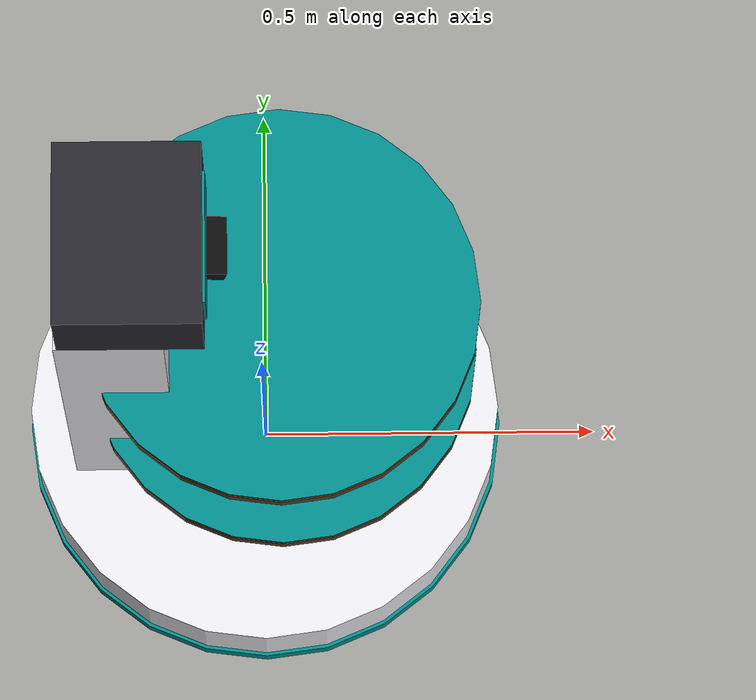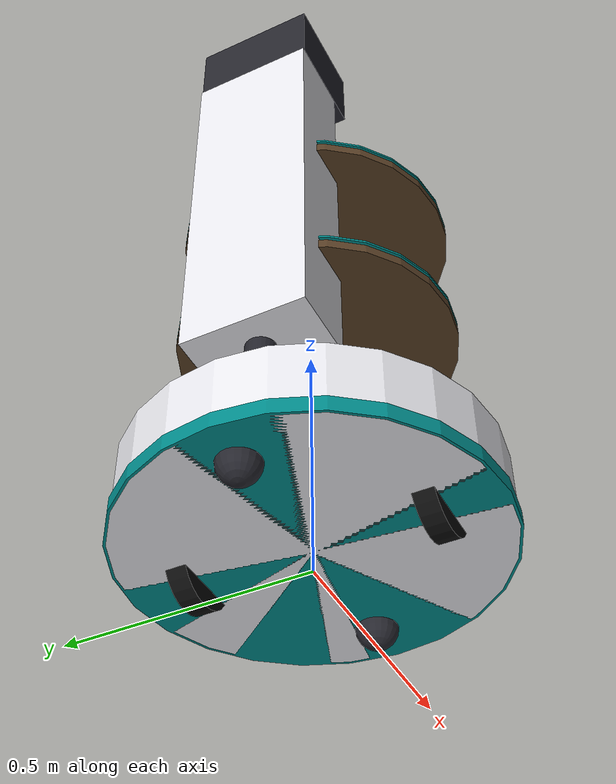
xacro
<?xml version="1.0"?>
<robot xmlns:xacro="http://ros.org/wiki/xacro" name="amr_butler">

  <!-- Namespace argument (same pattern as amr_description / amr_vision) -->
  <xacro:arg name="namespace" default="butler1"/>
  <xacro:property name="ns" value="$(arg namespace)"/>

  <!-- ======================= dimensions & masses ======================= -->
  <!-- base_link sits at wheel-axle height; base_footprint is its ground projection -->
  <xacro:property name="wheel_radius"    value="0.08"/>
  <xacro:property name="wheel_width"     value="0.04"/>
  <xacro:property name="wheel_sep"       value="0.46"/>
  <xacro:property name="wheel_mass"      value="1.0"/>

  <xacro:property name="chassis_radius"  value="0.35"/>
  <xacro:property name="chassis_height"  value="0.15"/>
  <!-- chassis bottom 0.04 m above ground -> center z in base_link frame -->
  <xacro:property name="chassis_z"       value="0.035"/>
  <xacro:property name="chassis_mass"    value="20.0"/>

  <xacro:property name="caster_radius"   value="0.04"/>
  <xacro:property name="caster_x"        value="0.26"/>
  <xacro:property name="caster_mass"     value="0.3"/>

  <!-- rear pillar: slim support pole from chassis top, then the main column -->
  <xacro:property name="pillar_x"        value="-0.20"/>
  <xacro:property name="pillar_sx"       value="0.15"/>
  <xacro:property name="pillar_sy"       value="0.25"/>
  <xacro:property name="pillar_sz"       value="0.79"/>
  <xacro:property name="pillar_z"        value="0.665"/>
  <xacro:property name="pillar_mass"     value="6.0"/>
  <xacro:property name="pole_radius"     value="0.03"/>
  <xacro:property name="pole_length"     value="0.16"/>
  <xacro:property name="pole_z"          value="0.19"/>

  <xacro:property name="tray_radius"     value="0.28"/>
  <xacro:property name="tray_thickness"  value="0.02"/>
  <xacro:property name="tray_x"          value="0.03"/>
  <xacro:property name="tray_mass"       value="0.8"/>
  <xacro:property name="tray_lower_z"    value="0.47"/>
  <xacro:property name="tray_upper_z"    value="0.77"/>

  <xacro:property name="head_sx"         value="0.20"/>
  <xacro:property name="head_sy"         value="0.25"/>
  <xacro:property name="head_sz"         value="0.15"/>
  <xacro:property name="head_x"          value="-0.17"/>
  <xacro:property name="head_z"          value="1.135"/>
  <xacro:property name="head_mass"       value="1.5"/>

  <!-- lidar center 0.25 m above ground (base_link z + wheel_radius) -->
  <xacro:property name="lidar_radius"    value="0.045"/>
  <xacro:property name="lidar_length"    value="0.05"/>
  <xacro:property name="lidar_x"         value="0.18"/>
  <xacro:property name="lidar_z"         value="0.17"/>
  <xacro:property name="lidar_mass"      value="0.2"/>

  <!-- camera ~1.2 m above ground, forward-facing, slight downward tilt -->
  <xacro:property name="camera_x"        value="-0.055"/>
  <xacro:property name="camera_z"        value="1.12"/>
  <xacro:property name="camera_pitch"    value="0.15"/>
  <xacro:property name="camera_mass"     value="0.05"/>

  <!-- ======================= materials ======================= -->
  <material name="butler_white"><color rgba="0.92 0.92 0.94 1"/></material>
  <material name="butler_dark"><color rgba="0.15 0.15 0.18 1"/></material>
  <material name="butler_teal"><color rgba="0.0 0.55 0.55 1"/></material>
  <material name="butler_tray"><color rgba="0.35 0.25 0.15 1"/></material>
  <material name="butler_black"><color rgba="0.05 0.05 0.05 1"/></material>

  <!-- ======================= inertia macros ======================= -->
  <xacro:macro name="cylinder_inertial" params="m r h ox:=0 oy:=0 oz:=0">
    <inertial>
      <origin xyz="${ox} ${oy} ${oz}" rpy="0 0 0"/>
      <mass value="${m}"/>
      <inertia ixx="${m*(3*r*r + h*h)/12.0}" ixy="0.0" ixz="0.0"
               iyy="${m*(3*r*r + h*h)/12.0}" iyz="0.0"
               izz="${m*r*r/2.0}"/>
    </inertial>
  </xacro:macro>

  <xacro:macro name="box_inertial" params="m sx sy sz ox:=0 oy:=0 oz:=0">
    <inertial>
      <origin xyz="${ox} ${oy} ${oz}" rpy="0 0 0"/>
      <mass value="${m}"/>
      <inertia ixx="${m*(sy*sy + sz*sz)/12.0}" ixy="0.0" ixz="0.0"
               iyy="${m*(sx*sx + sz*sz)/12.0}" iyz="0.0"
               izz="${m*(sx*sx + sy*sy)/12.0}"/>
    </inertial>
  </xacro:macro>

  <xacro:macro name="sphere_inertial" params="m r ox:=0 oy:=0 oz:=0">
    <inertial>
      <origin xyz="${ox} ${oy} ${oz}" rpy="0 0 0"/>
      <mass value="${m}"/>
      <inertia ixx="${2.0*m*r*r/5.0}" ixy="0.0" ixz="0.0"
               iyy="${2.0*m*r*r/5.0}" iyz="0.0"
               izz="${2.0*m*r*r/5.0}"/>
    </inertial>
  </xacro:macro>

  <!-- ======================= base ======================= -->
  <link name="${ns}/base_footprint"/>

  <link name="${ns}/base_link">
    <!-- chassis body -->
    <visual>
      <origin xyz="0 0 ${chassis_z}" rpy="0 0 0"/>
      <geometry><cylinder radius="${chassis_radius}" length="${chassis_height}"/></geometry>
      <material name="butler_white"/>
    </visual>
    <!-- teal bumper ring accent -->
    <visual>
      <origin xyz="0 0 ${chassis_z - chassis_height/2 + 0.015}" rpy="0 0 0"/>
      <geometry><cylinder radius="${chassis_radius + 0.005}" length="0.03"/></geometry>
      <material name="butler_teal"/>
    </visual>
    <!-- lidar mount stub -->
    <visual>
      <origin xyz="${lidar_x} 0 0.14" rpy="0 0 0"/>
      <geometry><cylinder radius="0.03" length="0.06"/></geometry>
      <material name="butler_dark"/>
    </visual>
    <collision>
      <origin xyz="0 0 ${chassis_z}" rpy="0 0 0"/>
      <geometry><cylinder radius="${chassis_radius}" length="${chassis_height}"/></geometry>
    </collision>
    <xacro:cylinder_inertial m="${chassis_mass}" r="${chassis_radius}"
                             h="${chassis_height}" oz="${chassis_z}"/>
  </link>

  <joint name="base_footprint_joint" type="fixed">
    <parent link="${ns}/base_footprint"/>
    <child link="${ns}/base_link"/>
    <origin xyz="0 0 ${wheel_radius}" rpy="0 0 0"/>
  </joint>

  <!-- ======================= drive wheels ======================= -->
  <xacro:macro name="drive_wheel" params="side y">
    <link name="${ns}/${side}_wheel">
      <visual>
        <geometry><cylinder radius="${wheel_radius}" length="${wheel_width}"/></geometry>
        <material name="butler_black"/>
      </visual>
      <collision>
        <geometry><cylinder radius="${wheel_radius}" length="${wheel_width}"/></geometry>
      </collision>
      <xacro:cylinder_inertial m="${wheel_mass}" r="${wheel_radius}" h="${wheel_width}"/>
    </link>
    <joint name="${side}_wheel_joint" type="continuous">
      <parent link="${ns}/base_link"/>
      <child link="${ns}/${side}_wheel"/>
      <origin xyz="0 ${y} 0" rpy="-1.5707963 0 0"/>
      <axis xyz="0 0 1"/>
    </joint>
  </xacro:macro>
  <xacro:drive_wheel side="left" y="${wheel_sep/2}"/>
  <xacro:drive_wheel side="right" y="${-wheel_sep/2}"/>

  <!-- ======================= casters ======================= -->
  <xacro:macro name="caster" params="pos x">
    <link name="${ns}/${pos}_caster">
      <visual>
        <geometry><sphere radius="${caster_radius}"/></geometry>
        <material name="butler_dark"/>
      </visual>
      <collision>
        <geometry><sphere radius="${caster_radius}"/></geometry>
      </collision>
      <xacro:sphere_inertial m="${caster_mass}" r="${caster_radius}"/>
    </link>
    <joint name="${pos}_caster_joint" type="fixed">
      <parent link="${ns}/base_link"/>
      <child link="${ns}/${pos}_caster"/>
      <origin xyz="${x} 0 ${caster_radius - wheel_radius}" rpy="0 0 0"/>
    </joint>
    <gazebo reference="${ns}/${pos}_caster">
      <mu1>0.001</mu1>
      <mu2>0.001</mu2>
    </gazebo>
  </xacro:macro>
  <xacro:caster pos="front" x="${caster_x}"/>
  <xacro:caster pos="rear" x="${-caster_x}"/>

  <!-- ======================= pillar + trays + head ======================= -->
  <link name="${ns}/pillar">
    <!-- support pole from chassis top to column bottom -->
    <visual>
      <origin xyz="0 0 ${pole_z - pillar_z}" rpy="0 0 0"/>
      <geometry><cylinder radius="${pole_radius}" length="${pole_length}"/></geometry>
      <material name="butler_dark"/>
    </visual>
    <!-- main column -->
    <visual>
      <geometry><box size="${pillar_sx} ${pillar_sy} ${pillar_sz}"/></geometry>
      <material name="butler_white"/>
    </visual>
    <collision>
      <geometry><box size="${pillar_sx} ${pillar_sy} ${pillar_sz}"/></geometry>
    </collision>
    <xacro:box_inertial m="${pillar_mass}" sx="${pillar_sx}" sy="${pillar_sy}"
                        sz="${pillar_sz}"/>
  </link>
  <joint name="pillar_joint" type="fixed">
    <parent link="${ns}/base_link"/>
    <child link="${ns}/pillar"/>
    <origin xyz="${pillar_x} 0 ${pillar_z}" rpy="0 0 0"/>
  </joint>

  <xacro:macro name="tray" params="pos z">
    <link name="${ns}/${pos}_tray">
      <visual>
        <geometry><cylinder radius="${tray_radius}" length="${tray_thickness}"/></geometry>
        <material name="butler_tray"/>
      </visual>
      <!-- raised lip so items look held in place -->
      <visual>
        <origin xyz="0 0 ${tray_thickness}" rpy="0 0 0"/>
        <geometry><cylinder radius="${tray_radius}" length="0.005"/></geometry>
        <material name="butler_teal"/>
      </visual>
      <collision>
        <geometry><cylinder radius="${tray_radius}" length="${tray_thickness}"/></geometry>
      </collision>
      <xacro:cylinder_inertial m="${tray_mass}" r="${tray_radius}" h="${tray_thickness}"/>
    </link>
    <joint name="${pos}_tray_joint" type="fixed">
      <parent link="${ns}/base_link"/>
      <child link="${ns}/${pos}_tray"/>
      <origin xyz="${tray_x} 0 ${z}" rpy="0 0 0"/>
    </joint>
  </xacro:macro>
  <xacro:tray pos="lower" z="${tray_lower_z}"/>
  <xacro:tray pos="upper" z="${tray_upper_z}"/>

  <link name="${ns}/head">
    <visual>
      <geometry><box size="${head_sx} ${head_sy} ${head_sz}"/></geometry>
      <material name="butler_dark"/>
    </visual>
    <!-- "face" panel accent -->
    <visual>
      <origin xyz="${head_sx/2 + 0.002} 0 0" rpy="0 0 0"/>
      <geometry><box size="0.004 0.18 0.10"/></geometry>
      <material name="butler_teal"/>
    </visual>
    <collision>
      <geometry><box size="${head_sx} ${head_sy} ${head_sz}"/></geometry>
    </collision>
    <xacro:box_inertial m="${head_mass}" sx="${head_sx}" sy="${head_sy}" sz="${head_sz}"/>
  </link>
  <joint name="head_joint" type="fixed">
    <parent link="${ns}/base_link"/>
    <child link="${ns}/head"/>
    <origin xyz="${head_x} 0 ${head_z}" rpy="0 0 0"/>
  </joint>

  <!-- ======================= lidar ======================= -->
  <link name="${ns}/lidar_link">
    <visual>
      <geometry><cylinder radius="${lidar_radius}" length="${lidar_length}"/></geometry>
      <material name="butler_black"/>
    </visual>
    <collision>
      <geometry><cylinder radius="${lidar_radius}" length="${lidar_length}"/></geometry>
    </collision>
    <xacro:cylinder_inertial m="${lidar_mass}" r="${lidar_radius}" h="${lidar_length}"/>
  </link>
  <joint name="lidar_joint" type="fixed">
    <parent link="${ns}/base_link"/>
    <child link="${ns}/lidar_link"/>
    <origin xyz="${lidar_x} 0 ${lidar_z}" rpy="0 0 0"/>
  </joint>

  <!-- ======================= camera ======================= -->
  <link name="${ns}/camera_link">
    <visual>
      <geometry><box size="0.03 0.08 0.03"/></geometry>
      <material name="butler_black"/>
    </visual>
    <xacro:box_inertial m="${camera_mass}" sx="0.03" sy="0.08" sz="0.03"/>
  </link>
  <joint name="camera_joint" type="fixed">
    <parent link="${ns}/base_link"/>
    <child link="${ns}/camera_link"/>
    <origin xyz="${camera_x} 0 ${camera_z}" rpy="0 ${camera_pitch} 0"/>
  </joint>

  <!-- optical frame (z forward -> REP-103 optical convention); gz camera data
       is expressed in this frame -->
  <link name="${ns}/camera_link_optical"/>
  <joint name="camera_optical_joint" type="fixed">
    <parent link="${ns}/camera_link"/>
    <child link="${ns}/camera_link_optical"/>
    <origin xyz="0 0 0" rpy="-1.5707963 0 -1.5707963"/>
  </joint>

  <!-- ======================= gz-sim sensors ======================= -->
  <gazebo reference="${ns}/lidar_link">
    <sensor name="lidar" type="gpu_lidar">
      <topic>/model/${ns}/scan</topic>
      <gz_frame_id>${ns}/lidar_link</gz_frame_id>
      <update_rate>10</update_rate>
      <always_on>true</always_on>
      <visualize>true</visualize>
      <lidar>
        <scan>
          <horizontal>
            <samples>360</samples>
            <resolution>1</resolution>
            <min_angle>-3.14159</min_angle>
            <max_angle>3.14159</max_angle>
          </horizontal>
        </scan>
        <range>
          <min>0.12</min>
          <max>8.0</max>
          <resolution>0.01</resolution>
        </range>
        <noise>
          <type>gaussian</type>
          <mean>0.0</mean>
          <stddev>0.01</stddev>
        </noise>
      </lidar>
    </sensor>
  </gazebo>

  <gazebo reference="${ns}/camera_link">
    <sensor name="rgbd_camera" type="rgbd_camera">
      <topic>/model/${ns}/camera</topic>
      <gz_frame_id>${ns}/camera_link_optical</gz_frame_id>
      <update_rate>10</update_rate>
      <always_on>true</always_on>
      <camera>
        <horizontal_fov>1.0472</horizontal_fov>
        <image>
          <width>640</width>
          <height>480</height>
        </image>
        <clip>
          <near>0.05</near>
          <far>8.0</far>
        </clip>
        <depth_camera>
          <clip>
            <near>0.1</near>
            <far>8.0</far>
          </clip>
        </depth_camera>
      </camera>
    </sensor>
  </gazebo>

  <!-- ======================= gz-sim system plugins ======================= -->
  <gazebo>
    <plugin filename="gz-sim-diff-drive-system" name="gz::sim::systems::DiffDrive">
      <left_joint>left_wheel_joint</left_joint>
      <right_joint>right_wheel_joint</right_joint>
      <wheel_separation>${wheel_sep}</wheel_separation>
      <wheel_radius>${wheel_radius}</wheel_radius>
      <topic>/model/${ns}/cmd_vel</topic>
      <odom_topic>/model/${ns}/odometry</odom_topic>
      <tf_topic>/model/${ns}/tf</tf_topic>
      <frame_id>${ns}/odom</frame_id>
      <child_frame_id>${ns}/base_footprint</child_frame_id>
      <odom_publish_frequency>30</odom_publish_frequency>
      <max_linear_velocity>1.0</max_linear_velocity>
      <min_linear_velocity>-0.5</min_linear_velocity>
      <max_angular_velocity>2.0</max_angular_velocity>
      <max_linear_acceleration>1.0</max_linear_acceleration>
      <max_angular_acceleration>2.0</max_angular_acceleration>
    </plugin>
    <plugin filename="gz-sim-joint-state-publisher-system"
            name="gz::sim::systems::JointStatePublisher">
      <topic>/model/${ns}/joint_states</topic>
    </plugin>
  </gazebo>

</robot>
